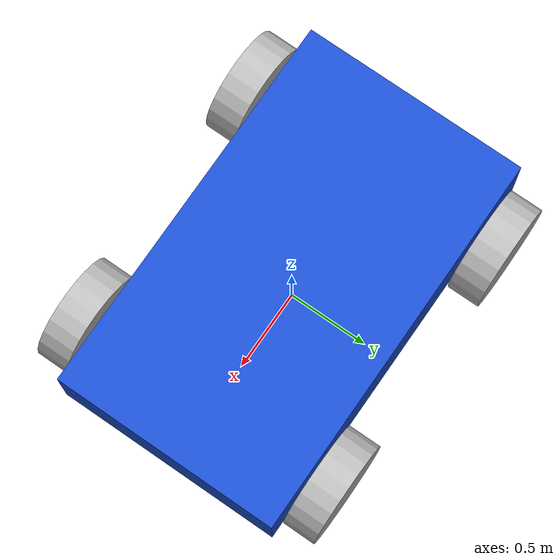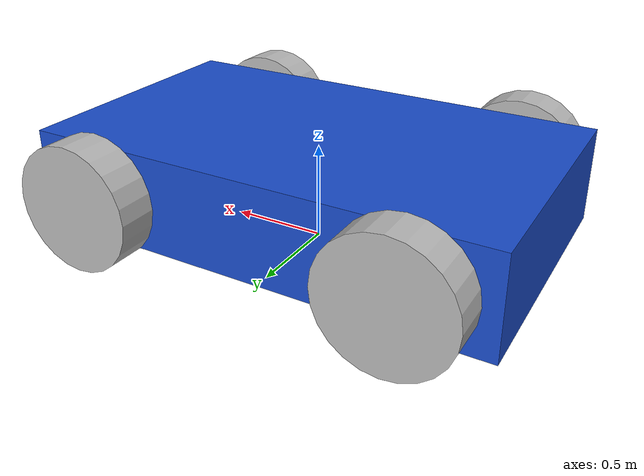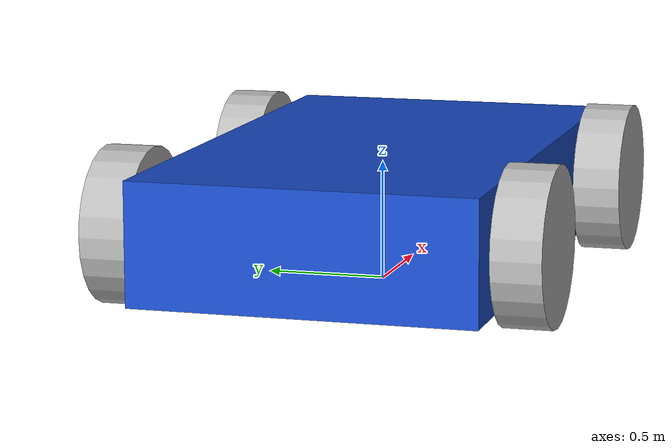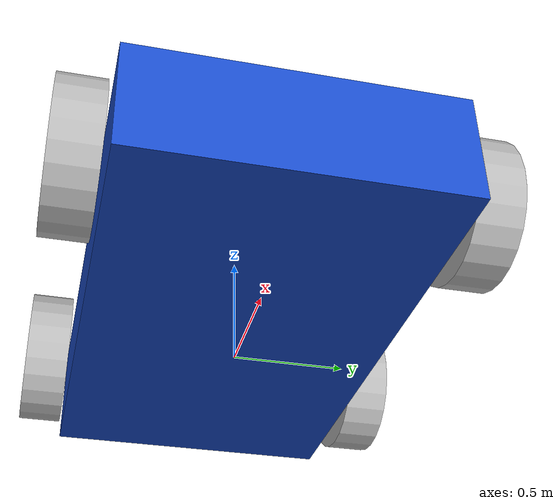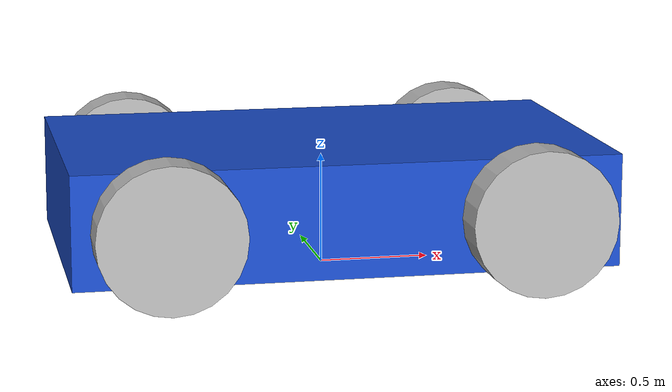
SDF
<?xml version="1.0"?>
<sdf version="1.6">
  <model name="ego_vehicle_ackermann">
    <pose>0 0 0.34 0 0 0</pose>
    <link name="chassis">
      <inertial><mass>1200</mass><inertia><ixx>500</ixx><iyy>900</iyy><izz>1000</izz><ixy>0</ixy><ixz>0</ixz><iyz>0</iyz></inertia></inertial>
      <collision name="collision"><geometry><box><size>2.4 1.4 0.5</size></box></geometry></collision>
      <visual name="visual"><geometry><box><size>2.4 1.4 0.5</size></box></geometry><material><ambient>0.1 0.3 0.8 1</ambient><diffuse>0.1 0.3 0.8 1</diffuse></material></visual>
    </link>

    <link name="front_left_knuckle"><pose>0.8 0.82 0 0 0 0</pose><inertial><mass>15</mass><inertia><ixx>0.5</ixx><iyy>0.5</iyy><izz>0.5</izz><ixy>0</ixy><ixz>0</ixz><iyz>0</iyz></inertia></inertial></link>
    <link name="front_right_knuckle"><pose>0.8 -0.82 0 0 0 0</pose><inertial><mass>15</mass><inertia><ixx>0.5</ixx><iyy>0.5</iyy><izz>0.5</izz><ixy>0</ixy><ixz>0</ixz><iyz>0</iyz></inertia></inertial></link>

    <link name="front_left_wheel"><pose>0.8 0.82 0 0 0 0</pose><inertial><mass>20</mass><inertia><ixx>0.579</ixx><iyy>1.024</iyy><izz>0.579</izz><ixy>0</ixy><ixz>0</ixz><iyz>0</iyz></inertia></inertial><collision name="c"><pose>0 0 0 1.5708 0 0</pose><geometry><cylinder><radius>0.32</radius><length>0.2</length></cylinder></geometry><surface><friction><ode><mu>0.8</mu><mu2>0.3</mu2><slip1>0.01</slip1><slip2>0.02</slip2></ode></friction><contact><ode><kp>100000</kp><kd>100</kd><max_vel>0.1</max_vel><min_depth>0.001</min_depth></ode></contact></surface></collision><visual name="v"><pose>0 0 0 1.5708 0 0</pose><geometry><cylinder><radius>0.32</radius><length>0.2</length></cylinder></geometry></visual></link>
    <link name="front_right_wheel"><pose>0.8 -0.82 0 0 0 0</pose><inertial><mass>20</mass><inertia><ixx>0.579</ixx><iyy>1.024</iyy><izz>0.579</izz><ixy>0</ixy><ixz>0</ixz><iyz>0</iyz></inertia></inertial><collision name="c"><pose>0 0 0 1.5708 0 0</pose><geometry><cylinder><radius>0.32</radius><length>0.2</length></cylinder></geometry><surface><friction><ode><mu>0.8</mu><mu2>0.3</mu2><slip1>0.01</slip1><slip2>0.02</slip2></ode></friction><contact><ode><kp>100000</kp><kd>100</kd><max_vel>0.1</max_vel><min_depth>0.001</min_depth></ode></contact></surface></collision><visual name="v"><pose>0 0 0 1.5708 0 0</pose><geometry><cylinder><radius>0.32</radius><length>0.2</length></cylinder></geometry></visual></link>
    <link name="rear_left_wheel"><pose>-0.8 0.82 0 0 0 0</pose><inertial><mass>20</mass><inertia><ixx>0.579</ixx><iyy>1.024</iyy><izz>0.579</izz><ixy>0</ixy><ixz>0</ixz><iyz>0</iyz></inertia></inertial><collision name="c"><pose>0 0 0 1.5708 0 0</pose><geometry><cylinder><radius>0.32</radius><length>0.2</length></cylinder></geometry><surface><friction><ode><mu>0.8</mu><mu2>0.3</mu2><slip1>0.01</slip1><slip2>0.02</slip2></ode></friction><contact><ode><kp>100000</kp><kd>100</kd><max_vel>0.1</max_vel><min_depth>0.001</min_depth></ode></contact></surface></collision><visual name="v"><pose>0 0 0 1.5708 0 0</pose><geometry><cylinder><radius>0.32</radius><length>0.2</length></cylinder></geometry></visual></link>
    <link name="rear_right_wheel"><pose>-0.8 -0.82 0 0 0 0</pose><inertial><mass>20</mass><inertia><ixx>0.579</ixx><iyy>1.024</iyy><izz>0.579</izz><ixy>0</ixy><ixz>0</ixz><iyz>0</iyz></inertia></inertial><collision name="c"><pose>0 0 0 1.5708 0 0</pose><geometry><cylinder><radius>0.32</radius><length>0.2</length></cylinder></geometry><surface><friction><ode><mu>0.8</mu><mu2>0.3</mu2><slip1>0.01</slip1><slip2>0.02</slip2></ode></friction><contact><ode><kp>100000</kp><kd>100</kd><max_vel>0.1</max_vel><min_depth>0.001</min_depth></ode></contact></surface></collision><visual name="v"><pose>0 0 0 1.5708 0 0</pose><geometry><cylinder><radius>0.32</radius><length>0.2</length></cylinder></geometry></visual></link>

    <joint name="front_left_steering_joint" type="revolute"><pose>0 0 0 0 0 0</pose><parent>chassis</parent><child>front_left_knuckle</child><axis><xyz>0 0 1</xyz><limit><lower>-0.6</lower><upper>0.6</upper><effort>300</effort><velocity>1.0</velocity></limit><dynamics><damping>5</damping><friction>0.5</friction></dynamics></axis></joint>
    <joint name="front_right_steering_joint" type="revolute"><pose>0 0 0 0 0 0</pose><parent>chassis</parent><child>front_right_knuckle</child><axis><xyz>0 0 1</xyz><limit><lower>-0.6</lower><upper>0.6</upper><effort>300</effort><velocity>1.0</velocity></limit><dynamics><damping>5</damping><friction>0.5</friction></dynamics></axis></joint>
    <joint name="front_left_wheel_joint" type="revolute"><pose>0 0 0 0 0 0</pose><parent>front_left_knuckle</parent><child>front_left_wheel</child><axis><xyz>0 1 0</xyz><limit><effort>500</effort><velocity>50</velocity></limit><dynamics><damping>1.0</damping><friction>0.1</friction></dynamics></axis></joint>
    <joint name="front_right_wheel_joint" type="revolute"><pose>0 0 0 0 0 0</pose><parent>front_right_knuckle</parent><child>front_right_wheel</child><axis><xyz>0 1 0</xyz><limit><effort>500</effort><velocity>50</velocity></limit><dynamics><damping>1.0</damping><friction>0.1</friction></dynamics></axis></joint>
    <joint name="rear_left_wheel_joint" type="revolute"><pose>0 0 0 0 0 0</pose><parent>chassis</parent><child>rear_left_wheel</child><axis><xyz>0 1 0</xyz><limit><effort>500</effort><velocity>50</velocity></limit><dynamics><damping>1.0</damping><friction>0.1</friction></dynamics></axis></joint>
    <joint name="rear_right_wheel_joint" type="revolute"><pose>0 0 0 0 0 0</pose><parent>chassis</parent><child>rear_right_wheel</child><axis><xyz>0 1 0</xyz><limit><effort>500</effort><velocity>50</velocity></limit><dynamics><damping>1.0</damping><friction>0.1</friction></dynamics></axis></joint>

    <link name="steering_wheel"><pose>0.35 0 0.85 0 0 0</pose><inertial><mass>1</mass><inertia><ixx>0.01</ixx><iyy>0.01</iyy><izz>0.01</izz><ixy>0</ixy><ixz>0</ixz><iyz>0</iyz></inertia></inertial></link>
    <joint name="steering_wheel_joint" type="revolute"><parent>chassis</parent><child>steering_wheel</child><axis><xyz>0 0 1</xyz><limit><lower>-7.85</lower><upper>7.85</upper><effort>100</effort><velocity>20</velocity></limit><dynamics><damping>0.2</damping></dynamics></axis></joint>

    <link name="camera_link"><pose>1.1 0 0.9 0 0 0</pose><inertial><mass>0.1</mass><inertia><ixx>0.001</ixx><iyy>0.001</iyy><izz>0.001</izz><ixy>0</ixy><ixz>0</ixz><iyz>0</iyz></inertia></inertial><sensor name="camera" type="camera"><always_on>true</always_on><update_rate>5</update_rate><camera><horizontal_fov>1.396</horizontal_fov><image><width>320</width><height>180</height><format>R8G8B8</format></image></camera><plugin name="camera_controller" filename="libgazebo_ros_camera.so"><ros><namespace>/sim/camera</namespace></ros><camera_name>front</camera_name><frame_name>camera_link</frame_name></plugin></sensor></link>
    <joint name="camera_joint" type="fixed"><parent>chassis</parent><child>camera_link</child></joint>
    <link name="lidar_link"><pose>0 0 1.1 0 0 0</pose><inertial><mass>0.5</mass><inertia><ixx>0.002</ixx><iyy>0.002</iyy><izz>0.002</izz><ixy>0</ixy><ixz>0</ixz><iyz>0</iyz></inertia></inertial><sensor name="lidar" type="ray"><always_on>true</always_on><update_rate>5</update_rate><ray><scan><horizontal><samples>360</samples><resolution>1</resolution><min_angle>-3.14159</min_angle><max_angle>3.14159</max_angle></horizontal></scan><range><min>0.2</min><max>80</max></range></ray><plugin name="lidar_controller" filename="libgazebo_ros_ray_sensor.so"><ros><namespace>/sim/lidar</namespace><remapping>~/out:=points</remapping></ros><output_type>sensor_msgs/PointCloud2</output_type></plugin></sensor></link>
    <joint name="lidar_joint" type="fixed"><parent>chassis</parent><child>lidar_link</child></joint>
    <link name="imu_link"><pose>0 0 0.7 0 0 0</pose><inertial><mass>0.1</mass><inertia><ixx>0.001</ixx><iyy>0.001</iyy><izz>0.001</izz><ixy>0</ixy><ixz>0</ixz><iyz>0</iyz></inertia></inertial><sensor name="imu" type="imu"><always_on>true</always_on><update_rate>50</update_rate><plugin name="imu_controller" filename="libgazebo_ros_imu_sensor.so"><ros><namespace>/sim/imu</namespace><remapping>~/out:=data</remapping></ros><frame_name>imu_link</frame_name></plugin></sensor></link>
    <joint name="imu_joint" type="fixed"><parent>chassis</parent><child>imu_link</child></joint>
    <link name="gps_link"><pose>0 0 0.8 0 0 0</pose><inertial><mass>0.1</mass><inertia><ixx>0.001</ixx><iyy>0.001</iyy><izz>0.001</izz><ixy>0</ixy><ixz>0</ixz><iyz>0</iyz></inertia></inertial><sensor name="gps" type="gps"><always_on>true</always_on><update_rate>10</update_rate><plugin name="gps_controller" filename="libgazebo_ros_gps_sensor.so"><ros><namespace>/sim/gnss</namespace><remapping>~/out:=data</remapping></ros></plugin></sensor></link>
    <joint name="gps_joint" type="fixed"><parent>chassis</parent><child>gps_link</child></joint>

    <plugin name="ackermann_drive" filename="libgazebo_ros_ackermann_drive.so"><ros><namespace>/sim/vehicle</namespace></ros><update_rate>50</update_rate><front_left_joint>front_left_wheel_joint</front_left_joint><front_right_joint>front_right_wheel_joint</front_right_joint><rear_left_joint>rear_left_wheel_joint</rear_left_joint><rear_right_joint>rear_right_wheel_joint</rear_right_joint><left_steering_joint>front_left_steering_joint</left_steering_joint><right_steering_joint>front_right_steering_joint</right_steering_joint><steering_wheel_joint>steering_wheel_joint</steering_wheel_joint><max_steer>0.6</max_steer><max_speed>2.0</max_speed><left_steering_pid_gain>80 0 5</left_steering_pid_gain><left_steering_i_range>-0.2 0.2</left_steering_i_range><right_steering_pid_gain>80 0 5</right_steering_pid_gain><right_steering_i_range>-0.2 0.2</right_steering_i_range><linear_velocity_pid_gain>20 0 1</linear_velocity_pid_gain><linear_velocity_i_range>-1 1</linear_velocity_i_range><publish_odom>false</publish_odom></plugin>
    <plugin name="vehicle_ground_truth_odom" filename="libgazebo_ros_p3d.so"><ros><namespace>/sim/vehicle</namespace><remapping>odom:=odom</remapping></ros><body_name>chassis</body_name><frame_name>chassis</frame_name><update_rate>50</update_rate></plugin>
  </model>
</sdf>
